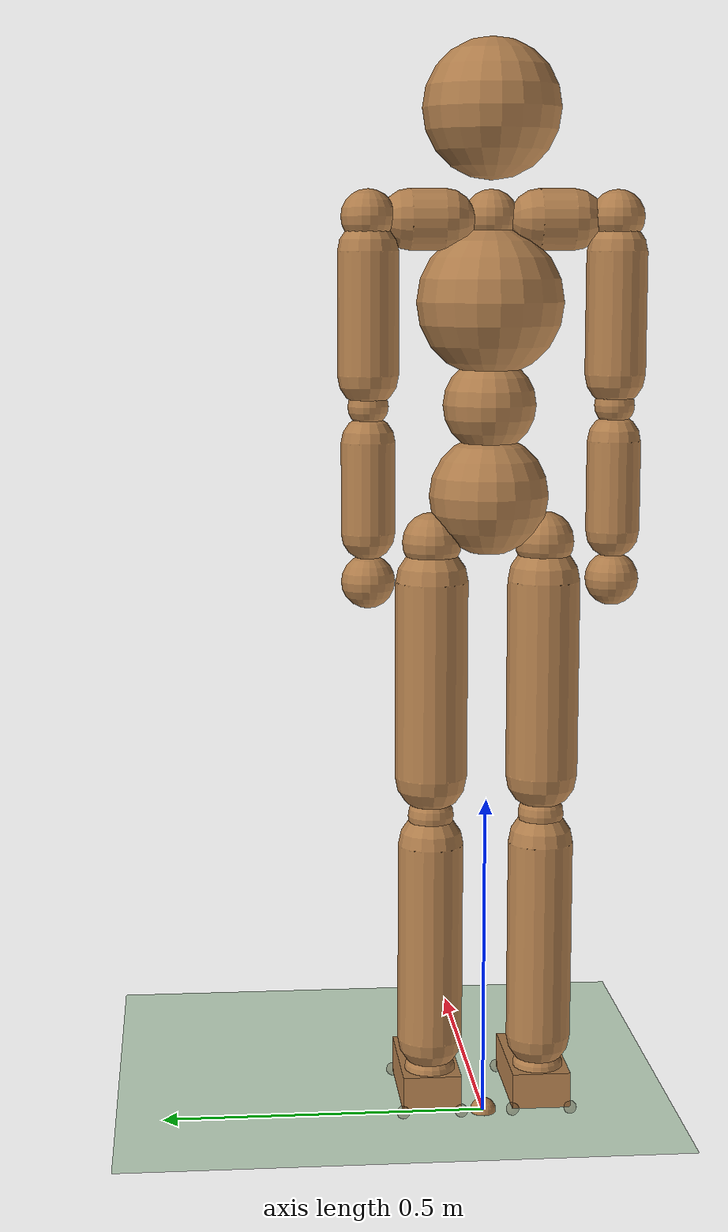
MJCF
<mujoco model="humanoid">
    <compiler angle="radian" inertiafromgeom="true"/>

    <default>
        <joint type="hinge" limited="true" armature="0.1" damping="20" stiffness="0.1"/>
        <position ctrllimited="true" ctrlrange="-3.1416 3.1416" kp="100"/>
        <geom conaffinity="1" condim="1" contype="1" margin="0.001" rgba="0.7 0.5 .3 1" density="100"/>
        <site rgba="0.7 0.5 0.3 1"/>
    </default>

    <option integrator="Euler" iterations="100" solver="PGS" timestep="0.01"> </option>

    <asset>
        <texture builtin="gradient" height="100" rgb1=".4 .5 .6" rgb2="0 0 0" type="skybox" width="100"/>
        <texture builtin="flat" height="1278" mark="cross" markrgb="1 1 1" name="texgeom" random="0.01" rgb1="0.8 0.6 0.4" rgb2="0.8 0.6 0.4" type="cube" width="127"/>
        <texture name="grid" type="2d" builtin="checker" rgb1=".1 .2 .3" rgb2=".2 .3 .4" width="300" height="300" mark="edge" markrgb=".2 .3 .4"/>
        <material name="MatPlane" reflectance="0.2" texrepeat="1 1" texuniform="true" texture="grid"/>
        <material name="geom" texture="texgeom" texuniform="true"/>
    </asset>

    <worldbody>
        <geom condim="3" friction="1.0 1.0 1.0" material="MatPlane" name="floor" pos="0 0 0" rgba="0.8 0.9 0.8 1" size="50 50 0.2" type="plane"/>
        <light cutoff="100" diffuse="1 1 1" dir="-0 0 -1.3" directional="true" exponent="1" pos="0 0 1.3" specular=".1 .1 .1"/>
        <site name="pf" pos="0 0 0" size="0.02"/>
        <body name="root" pos="0 0 0.9">
            <geom name="root" pos="0 0 0.07" size=".09" type="sphere"/>
            <camera name="back" pos="-3 0 1" xyaxes="0 -1 0 1 0 2" mode="trackcom"/>
            <camera name="side" pos="0 -3 1" xyaxes="1 0 0 0 1 2" mode="trackcom"/>
            <joint armature="0" damping="0" limited="false" name="root" pos="0 0 0" stiffness="0" type="free"/>
            <site name="joint_waist" pos="0 0 0.205" size="0.07" type="sphere"/>
            <site name="joint_front_x" rgba='1 0 0 1' pos="0.08 0 0.205" size="0.01 0.01 0.01" type="box"/>
            <body name="chest" pos="0 0 0.236151">
                <geom name="chest" pos="0 0 0.12" size=".11" type="sphere"/>
                <joint name="chest_x" axis="1 0 0" pos="0 0 0" range="-1.2 1.2" type="hinge"/>
                <joint name="chest_y" axis="0 1 0" pos="0 0 0" range="-1.2 1.2" type="hinge"/>
                <joint name="chest_z" axis="0 0 1" pos="0 0 0" range="-1.2 1.2" type="hinge"/>
                <body name="neck" pos="0 0 0.223894">
                    <geom name="neck" pos="0 0 0.175" size=".1025" type="sphere"/>
                    <joint name="neck_x" axis="1 0 0" pos="0 0 0" range="-1.0 1.0" type="hinge"/>
                    <joint name="neck_y" axis="0 1 0" pos="0 0 0" range="-1.0 1.0" type="hinge"/>
                    <joint name="neck_z" axis="0 0 1" pos="0 0 0" range="-1.0 1.0" type="hinge"/>
                    <site name="joint_neck" pos="0 0 0.02" size="0.04" type="sphere"/>
                </body>
                <site name="right_clavicle" euler="-1.57 0 0" pos="-0.011 -0.095 0.24" size="0.045 0.025" type="capsule"/>
                <body name="right_shoulder" pos="-0.02405 -0.18311 0.2435">
                    <geom fromto="0 0 -0.05 0 0 -0.23" name="right_shoulder" size="0.045" type="capsule"/>
                    <site name="joint_right_shoulder" pos="0 0 0" size="0.04" type="sphere"/>
                    <joint name="right_shoulder_x" axis="1 0 0" pos="0 0 0" range="-3.14 0.5" type="hinge"/>
                    <joint name="right_shoulder_y" axis="0 1 0" pos="0 0 0" range="-3.14 0.7" type="hinge"/>
                    <joint name="right_shoulder_z" axis="0 0 1" pos="0 0 0" range="-1.5 1.5" type="hinge"/>
                    <body name="right_elbow" pos="0 0 -0.274788">
                        <geom fromto="0 0 -0.0525 0 0 -0.1875" name="right_elbow" size="0.04" type="capsule"/>
                        <joint axis="0 -1 0" name="right_elbow" pos="0 0 0" range="0 2.8" type="hinge"/>
                        <site name="joint_right_elbow" pos="0 0 0" size="0.03" type="sphere"/>
                        <geom name="right_wrist" pos="0 0 -0.258947" size="0.04" type="sphere"/>
                    </body>
                </body>
                <site name="left_clavicle" euler="-1.57 0 0" pos="-0.011 0.095 0.24" size="0.045 0.025" type="capsule"/>
                <body name="left_shoulder" pos="-0.02405 0.18311 0.2435">
                    <geom fromto="0 0 -0.05 0 0 -0.23" name="left_shoulder" size="0.045" type="capsule"/>
                    <joint name="left_shoulder_x" axis="1 0 0" pos="0 0 0" range="-0.5 3.14"  type="hinge"/>
                    <joint name="left_shoulder_y" axis="0 1 0" pos="0 0 0" range="-3.14 0.7"  type="hinge"/>
                    <joint name="left_shoulder_z" axis="0 0 1" pos="0 0 0" range="-1.5 1.5"  type="hinge"/>
                    <site name="joint_left_shoulder" pos="0 0 0" size="0.04" type="sphere"/>
                    <body name="left_elbow" pos="0 0 -0.274788">
                        <geom fromto="0 0 -0.0525 0 0 -0.1875" name="left_elbow" size="0.04" type="capsule"/>
                        <joint axis="0 -1 0" name="left_elbow" pos="0 0 0" range="0 2.8" type="hinge"/>
                        <site name="joint_left_elbow" pos="0 0 0" size="0.03" type="sphere"/>
                        <geom name="left_wrist" pos="0 0 -0.258947" size="0.04" type="sphere"/>
                    </body>
                </body>
            </body>
            <body name="right_hip" pos="0 -0.084887 0">
                <geom fromto="0 0 -0.06 0 0 -0.36" name="right_hip" size="0.055" type="capsule"/>
                <site name="joint_right_hip" pos="0 0 0" size="0.045" type="sphere"/>
                <joint name="right_hip_x" axis="1 0 0" pos="0 0 0" range="-1.2 1.2" type="hinge"/>
                <joint name="right_hip_y" axis="0 1 0" pos="0 0 0" range="-2.57 1.57" type="hinge"/>
                <joint name="right_hip_z" axis="0 0 1" pos="0 0 0" range=" -1.0 1.0" type="hinge"/>
                <body name="right_knee" pos="0 0 -0.421546">
                    <geom fromto="0 0 -0.045 0 0 -0.355" name="right_knee" size="0.05" type="capsule"/>
                    <site name="joint_right_knee" pos="0 0 0" size="0.035" type="sphere"/>
                    <joint axis="0 -1 0" name="right_knee" pos="0 0 0" range="-2.7 0.0" type="hinge"/>
                    <body name="right_ankle" pos="0 0 -0.40987">
                        <joint name="right_ankle_x" axis="1 0 0" pos="0 0 0" range="-1.0 1.0" type="hinge"/>
                        <joint name="right_ankle_y" axis="0 1 0" pos="0 0 0" range="-1.0 1.57" type="hinge"/>
                        <joint name="right_ankle_z" axis="0 0 1" pos="0 0 0" range="-1.0 1.0" type="hinge"/>
                        <site name="joint_right_ankle" pos="0 0 0" size="0.04" type="sphere"/>
                        <geom name="right_ankle" pos="0.045 0 -0.0225" size="0.0885 0.045 0.0275" type="box"/>
                        <site name="sensorsurf1" pos="0.1335 0.045 -0.05" size=".01" type="sphere" rgba="0.3 0.2 0.1 0.3"/>
                        <site name="sensorsurf2" pos="-0.0435 0.045 -0.05" size=".01" type="sphere" rgba="0.3 0.2 0.1 0.3"/>
                        <site name="sensorsurf3" pos="0.1335 -0.045 -0.05" size=".01" type="sphere" rgba="0.3 0.2 0.1 0.3"/>
                        <site name="sensorsurf4" pos="-0.0435 -0.045 -0.05" size=".01" type="sphere" rgba="0.3 0.2 0.1 0.3"/>
                    </body>
                </body>
            </body>
            <body name="left_hip" pos="0 0.084887 0">
                <geom fromto="0 0 -0.06 0 0 -0.36" name="left_hip" size="0.055" type="capsule"/>
                <site name="joint_left_hip" pos="0 0 0" size="0.045" type="sphere"/>
                <joint name="left_hip_x" axis="1 0 0" pos="0 0 0" range="-1.2 1.2" type="hinge"/>
                <joint name="left_hip_y" axis="0 1 0" pos="0 0 0" range="-2.57 1.57" type="hinge"/>
                <joint name="left_hip_z" axis="0 0 1" pos="0 0 0" range="-1.0 1.0" type="hinge"/>
                <body name="left_knee" pos="0 0 -0.421546">
                    <geom fromto="0 0 -0.045 0 0 -0.355" name="left_knee" size="0.05" type="capsule"/>
                    <site name="joint_left_knee" pos="0 0 0" size="0.035" type="sphere"/>
                    <joint axis="0 -1 0" name="left_knee" pos="0 0 0" range="-2.7 0.0" type="hinge"/>
                    <body name="left_ankle" pos="0 0 -0.40987">
                        <joint name="left_ankle_x" axis="1 0 0" pos="0 0 0" range="-1.0 1.0" type="hinge"/>
                        <joint name="left_ankle_y" axis="0 1 0" pos="0 0 0" range="-1.0 1.57" type="hinge"/>
                        <joint name="left_ankle_z" axis="0 0 1" pos="0 0 0" range="-1.0 1.0" type="hinge"/>
                        <site name="joint_left_ankle" pos="0 0 0" size="0.04" type="sphere"/>
                        <geom name="left_ankle" pos="0.045 0 -0.0225" size="0.0885 0.045 0.0275" type="box"/>
                        <site name="sensorsurf5" pos="0.1335 0.045 -0.05" size=".01" type="sphere" rgba="0.3 0.2 0.1 0.3"/>
                        <site name="sensorsurf6" pos="-0.0435 0.045 -0.05" size=".01" type="sphere" rgba="0.3 0.2 0.1 0.3"/>
                        <site name="sensorsurf7" pos="0.1335 -0.045 -0.05" size=".01" type="sphere" rgba="0.3 0.2 0.1 0.3"/>
                        <site name="sensorsurf8" pos="-0.0435 -0.045 -0.05" size=".01" type="sphere" rgba="0.3 0.2 0.1 0.3"/>
                    </body>
                </body>
            </body>
        </body>
    </worldbody>

    <actuator>
        <position gear="1" joint="chest_x"          name="chest_x"          ctrlrange="-1.2 1.2"/>
        <position gear="1" joint="chest_y"          name="chest_y"          ctrlrange="-1.2 1.2"/>
        <position gear="1" joint="chest_z"          name="chest_z"          ctrlrange="-1.2 1.2"/>

        <position gear="1" joint="neck_x"           name="neck_x"           ctrlrange="-1.0 1.0"/>
        <position gear="1" joint="neck_y"           name="neck_y"           ctrlrange="-1.0 1.0"/>
        <position gear="1" joint="neck_z"           name="neck_z"           ctrlrange="-1.0 1.0"/>

        <position gear="1" joint="right_shoulder_x" name="right_shoulder_x" ctrlrange="-3.14 0.5"/>
        <position gear="1" joint="right_shoulder_y" name="right_shoulder_y" ctrlrange="-3.14 0.7"/>
        <position gear="1" joint="right_shoulder_z" name="right_shoulder_z" ctrlrange="-1.5 1.5" />
        <position gear="1" joint="right_elbow"      name="right_elbow"      ctrlrange=" 0.0 2.8" />

        <position gear="1" joint="left_shoulder_x"  name="left_shoulder_x"  ctrlrange="-0.5 3.14"/>
        <position gear="1" joint="left_shoulder_y"  name="left_shoulder_y"  ctrlrange="-3.14 0.7"/>
        <position gear="1" joint="left_shoulder_z"  name="left_shoulder_z"  ctrlrange="-1.5 1.5" />
        <position gear="1" joint="left_elbow"       name="left_elbow"       ctrlrange=" 0.0 2.8" />

        <position gear="1" joint="right_hip_x"      name="right_hip_x"      ctrlrange="-1.2 1.2" />
        <position gear="1" joint="right_hip_y"      name="right_hip_y"      ctrlrange="-2.57 1.57"/>
        <position gear="1" joint="right_hip_z"      name="right_hip_z"      ctrlrange="-1.0 1.0" />
        <position gear="1" joint="right_knee"       name="right_knee"       ctrlrange="-2.7 0.0" />
        <position gear="1" joint="right_ankle_x"    name="right_ankle_x"    ctrlrange="-1.0 1.0" />
        <position gear="1" joint="right_ankle_y"    name="right_ankle_y"    ctrlrange="-1.0 1.57"/>
        <position gear="1" joint="right_ankle_z"    name="right_ankle_z"    ctrlrange="-1.0 1.0" />

        <position gear="1" joint="left_hip_x"       name="left_hip_x"       ctrlrange="-1.2 1.2"/>
        <position gear="1" joint="left_hip_y"       name="left_hip_y"       ctrlrange="-2.57 1.57"/>
        <position gear="1" joint="left_hip_z"       name="left_hip_z"       ctrlrange="-1.0 1.0"/>
        <position gear="1" joint="left_knee"        name="left_knee"        ctrlrange="-2.7 0.0"/>
        <position gear="1" joint="left_ankle_x"     name="left_ankle_x"     ctrlrange="-1.0 1.0"/>
        <position gear="1" joint="left_ankle_y"     name="left_ankle_y"     ctrlrange="-1.0 1.57"/>
        <position gear="1" joint="left_ankle_z"     name="left_ankle_z"     ctrlrange="-1.0 1.0"/>
    </actuator>

    <sensor>
        <touch name="touchsensor1" site="sensorsurf1" />
        <touch name="touchsensor2" site="sensorsurf2" />
        <touch name="touchsensor3" site="sensorsurf3" />
        <touch name="touchsensor4" site="sensorsurf4" />
        <touch name="touchsensor5" site="sensorsurf5" />
        <touch name="touchsensor6" site="sensorsurf6" />
        <touch name="touchsensor7" site="sensorsurf7" />
        <touch name="touchsensor8" site="sensorsurf8" />
    </sensor>

</mujoco>
